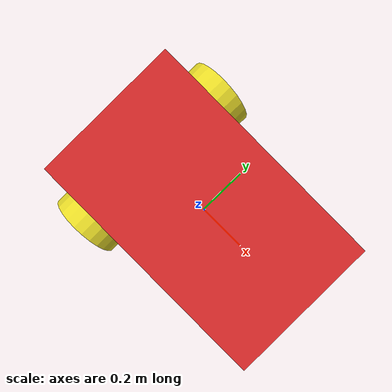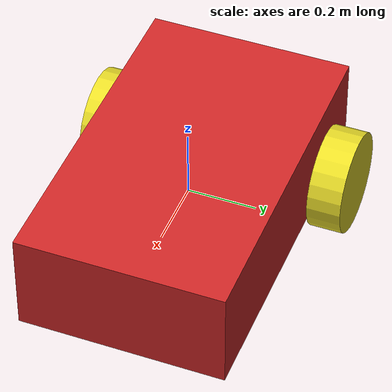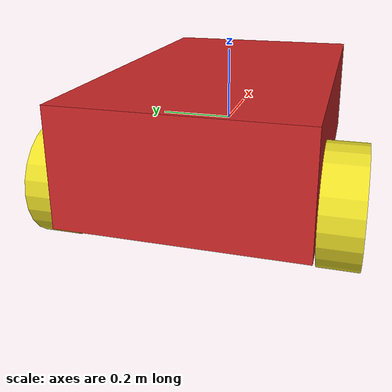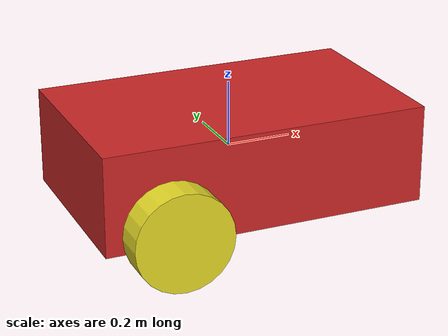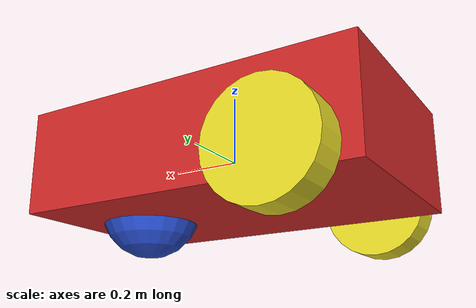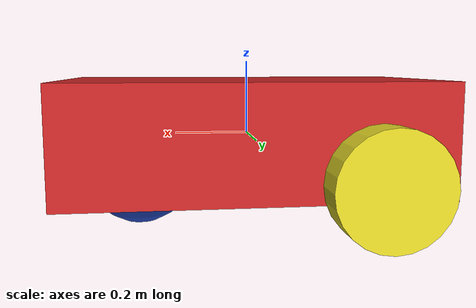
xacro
<?xml version="1.0"?>

<robot name="differential_drive_robot" xmlns:xacro="http://www.ros.org/wiki/xacro">

    <!-- Body dimensions -->
    <xacro:property name="body_link_x_dim" value="1"/>
    <xacro:property name="body_link_y_dim" value="0.6"/>
    <xacro:property name="body_link_z_dim" value="0.3"/>

    <!-- Wheel dimensions and locations -->
    <xacro:property name="wheel_link_radius" value="0.15"/>
    <xacro:property name="wheel_link_length" value="0.1"/>
    <xacro:property name="wheel_link_z_location" value="-0.1"/>

    <!-- Caster sphere dimensions and locations -->
    <xacro:property name="caster_link_radius" value="0.15"/>
    <xacro:property name="caster_link_z_location" value="-0.1"/>

    <!-- Material density -->
    <xacro:property name="body_density" value="2710.0"/>
    <xacro:property name="wheel_density" value="2710.0"/>
    <xacro:property name="caster_density" value="2710.0"/>

    <!-- Pi constant -->
    <xacro:property name="pi_const" value="3.14159265"/>

    <!-- Robot body mass, wheel mass, caster mass -->
    <xacro:property name="body_mass" value="${body_density*body_link_x_dim*body_link_y_dim*body_link_z_dim}"/>
    <xacro:property name="wheel_mass" value="${wheel_density*pi_const*wheel_link_radius*wheel_link_radius*wheel_link_length}"/>
    <xacro:property name="caster_mass" value="${caster_density*(4.0/3.0)*pi_const*caster_link_radius*caster_link_radius*caster_link_radius}"/>

    <!-- Moments of inertia of the wheel -->
    <xacro:property name="Iz_wheel" value="${0.5*wheel_mass*wheel_link_radius*wheel_link_radius}"/>
    <xacro:property name="I_wheel" value="${(1.0/12.0)*wheel_mass*(3.0*wheel_link_radius*wheel_link_radius+wheel_link_length*wheel_link_length)}"/>

    <!-- Moments of inertia of the caster sphere -->
    <xacro:property name="I_caster" value="${(2.0/5.0)*caster_mass*caster_link_radius*caster_link_radius}"/>

    <!-- This macro defines the complete inertial section of the wheel -->
    <xacro:macro name="inertia_wheel">
        <inertial>
            <origin rpy="0 0 0" xyz="0 0 0"/>
            <mass value="${wheel_mass}"/>
            <inertia ixx="${I_wheel}" ixy="0.0" ixz="0.0" iyy="${I_wheel}" iyz="0" izz="${Iz_wheel}"/>
        </inertial>
    </xacro:macro>

    <!-- This macro defines the complete inertial section of the caster -->
    <xacro:macro name="inertia_caster">
        <inertial>
            <origin rpy="0 0 0" xyz="0 0 0"/>
            <mass value="${caster_mass}"/>
            <inertia ixx="${I_caster}" ixy="0.0" ixz="0.0" iyy="${I_caster}" iyz="0" izz="${I_caster}"/>
        </inertial>
    </xacro:macro>

    <!-- Include extra Gazebo options and motion control driver -->
    <xacro:include filename="$(find mobile_dd_robot)/model/robot.gazebo" />

    <!-- Dummy link to prevent Gazebo errors -->
    <link name="dummy">
    </link>
    <joint name="dummy_joint" type="fixed">
        <parent link="dummy"/>
        <child link="body_link"/>
    </joint>

    <!-- Robot Body Link -->
    <link name="body_link">
        <visual>
            <geometry>
                <box size="${body_link_x_dim} ${body_link_y_dim} ${body_link_z_dim}"/>
            </geometry>
        <origin rpy="0 0 0" xyz="0 0 0"/>
        </visual>
        <collision>

            <geometry>
                <box size="${body_link_x_dim} ${body_link_y_dim} ${body_link_z_dim}"/>
            </geometry>
            <origin rpy="0 0 0" xyz="0 0 0"/>
        </collision>
        <inertial>
            <origin rpy="0 0 0" xyz="0 0 0"/>
            <mass value="${body_mass}"/>
            <inertia
                ixx="${(1/12.0)*body_mass*(body_link_y_dim*body_link_y_dim+body_link_z_dim*body_link_z_dim)}"
                ixy="0.0" ixz="0.0" iyz="0.0"
                iyy="${(1/12.0)*body_mass*(body_link_x_dim*body_link_x_dim+body_link_z_dim*body_link_z_dim)}"
                izz="${(1/12.0)*body_mass*(body_link_y_dim*body_link_y_dim+body_link_x_dim*body_link_x_dim)}"/>
        </inertial>
    </link>

    <!-- Back Right Wheel -->
    <joint name="wheel1_joint" type="continuous">
        <parent link="body_link"/>
        <child link="wheel1_link"/>
        <origin xyz="${-2*wheel_link_radius} ${-body_link_y_dim/2-wheel_link_length/2} ${wheel_link_z_location}" rpy="0 0 0"/>
        <axis xyz="0 1 0"/>
        <limit effort="1000" velocity="1000"/>
        <dynamics damping="1.0" friction="1.0"/>
    </joint>

    <link name="wheel1_link">
        <visual>
            <origin rpy="1.570795 0 0" xyz="0 0 0"/>
            <geometry>
                <cylinder length="${wheel_link_length}" radius="${wheel_link_radius}"/>
            </geometry>
        </visual>
        <collision>
            <origin rpy="1.570795 0 0" xyz="0 0 0"/>
            <geometry>
                <cylinder length="${wheel_link_length}" radius="${wheel_link_radius}"/>
            </geometry>
        </collision>
        <xacro:inertia_wheel/>
    </link>

    <!-- Back Left Wheel -->
    <joint name="wheel2_joint" type="continuous">
        <parent link="body_link"/>
        <child link="wheel2_link"/>
        <origin xyz="${-2*wheel_link_radius} ${body_link_y_dim/2+wheel_link_length/2} ${wheel_link_z_location}" rpy="0 0 0"/>
        <axis xyz="0 1 0"/>
        <limit effort="1000" velocity="1000"/>
        <dynamics damping="1.0" friction="1.0"/>
    </joint>

    <link name="wheel2_link">
        <visual>
            <origin rpy="1.570795 0 0" xyz="0 0 0"/>
            <geometry>
                <cylinder length="${wheel_link_length}" radius="${wheel_link_radius}"/>
            </geometry>
        </visual>
        <collision>
            <origin rpy="1.570795 0 0" xyz="0 0 0"/>
            <geometry>
                <cylinder length="${wheel_link_length}" radius="${wheel_link_radius}"/>
            </geometry>
        </collision>
        <xacro:inertia_wheel/>
    </link>

    <!-- Caster Wheel -->
    <joint name="caster_joint" type="fixed">
        <parent link="body_link"/>
        <child link="caster_link"/>
        <origin xyz="${2*caster_link_radius} 0 ${caster_link_z_location}" rpy="0 0 0"/>
    </joint>

    <link name="caster_link">
        <visual>
            <origin rpy="0 0 0" xyz="0 0 0"/>
            <geometry>
                <sphere radius="${caster_link_radius}"/>
            </geometry>
        </visual>
        <collision>
            <origin rpy="0 0 0" xyz="0 0 0"/>
            <geometry>
                <sphere radius="${caster_link_radius}"/>
            </geometry>
        </collision>
        <xacro:inertia_caster/>
    </link>

</robot>
